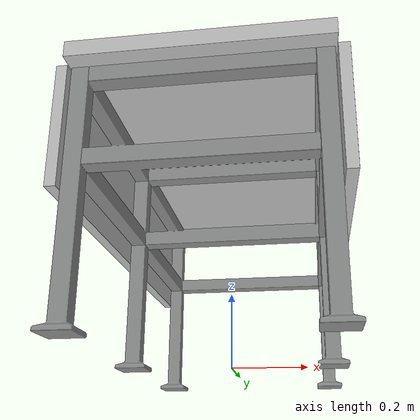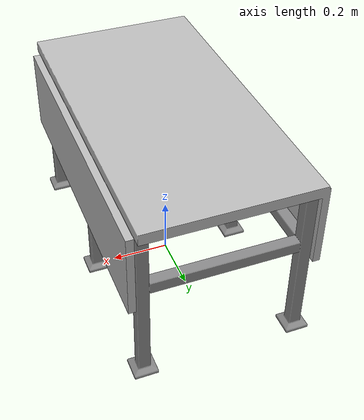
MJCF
<mujoco>
  <compiler angle="radian" assetdir="assets"/>
  <option>
    <flag/>
  </option>
  <statistic/>
  <asset>
    <texture type="2d" colorspace="sRGB" name="plywood_diff_1k" file="plywood_diff_1k.png"/>
    <texture type="2d" colorspace="linear" name="plywood_nor_gl_1k" file="plywood_nor_gl_1k.png"/>
    <texture type="2d" colorspace="linear" name="plywood_arm_1k" file="plywood_arm_1k.png"/>
    <texture type="2d" colorspace="linear" name="noise_normal" file="noise_normal.png"/>
    <material name="m_wood_counter_a01" rgba="0.735357 0.735357 0.735357 1.0" reflectance="0.5" roughness="1.0" metallic="1.0">
      <layer texture="plywood_diff_1k" role="rgb"/>
      <layer texture="plywood_nor_gl_1k" role="normal"/>
      <layer texture="plywood_arm_1k" role="orm"/>
    </material>
    <material name="aluminum_rough" rgba="0.5349573 0.5368318 0.5370987 1.0" reflectance="0.5" roughness="0.6" metallic="1.0" texuniform="true" texrepeat="12.0 12.0">
      <layer texture="noise_normal" role="normal"/>
    </material>
    <mesh name="table_surface1" file="table_surface1.obj"/>
    <mesh name="table_column" file="table_column.obj"/>
  </asset>
  <worldbody>
    <geom name="table_surface1" pos="0.0002279 -1e-07 0.5344253" quat="1.0 0.0 0.0 0.0" type="mesh" mesh="table_surface1" material="m_wood_counter_a01" group="2"/>
    <geom name="table_column" pos="0.0 0.0 0.0" quat="1.0 0.0 0.0 0.0" type="mesh" mesh="table_column" material="aluminum_rough" group="2"/>
  </worldbody>
</mujoco>
